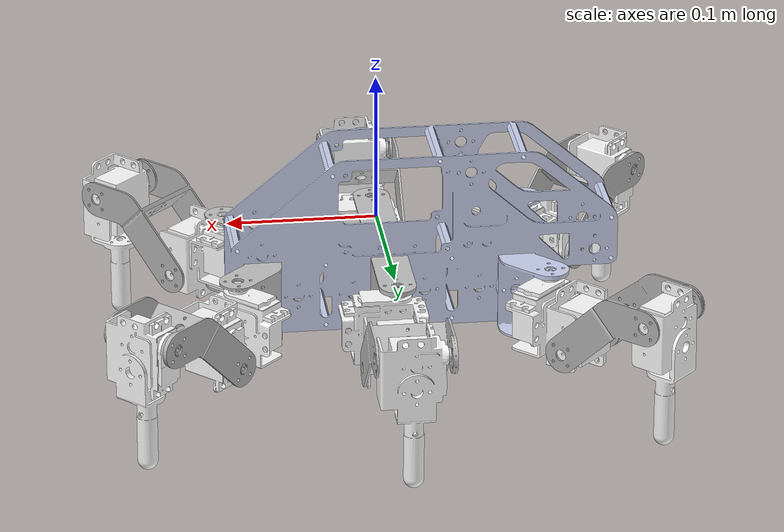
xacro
<?xml version="1.0" encoding="utf-8"?>
<!-- |    This document was autogenerated by xacro from sample_hexapod_robot.urdf      | -->
<!-- |    EDITING THIS FILE BY HAND IS NOT RECOMMENDED                                 | -->
<robot name="sample_hexapod_robot">
  <link name="base_link">
    <inertial>
      <origin rpy="0 0 0" xyz="-0.0201724295551156 -0.0157441046135445 -0.00674889408254364"/>
      <mass
        value="0.0716155283270815" />
      <inertia
        ixx="6.13329692510778E-05"
        ixy="1.59034863834077E-05"
        ixz="1.20390377320831E-22"
        iyy="0.00027215207463891"
        iyz="1.62249266634428E-22"
        izz="0.00032629128217773" />
    </inertial>
    <visual>
      <origin rpy="0 0 0" xyz="0 0 0"/>
      <geometry>
        <mesh filename="package://sample_hexapod_robot/meshes/base_link.STL"/>
      </geometry>
      <material name="">
        <color rgba="0.792156862745098 0.819607843137255 0.933333333333333 1"/>
      </material>
    </visual>
    <collision>
      <origin rpy="0 0 0" xyz="0 0 0"/>
      <geometry>
        <mesh filename="package://sample_hexapod_robot/meshes/base_link.STL"/>
      </geometry>
    </collision>
  </link>
  <link name="RightFrontLink1">
    <inertial>
      <origin rpy="0 0 0" xyz="-2.77555756156289E-17 0.0117444424090268 -0.00583560923500802"/>
      <mass value="0.00481299409312765"/>
      <inertia ixx="1.18177478674688E-06" ixy="-1.42650712427758E-21" ixz="-2.59695162761179E-24" iyy="2.88509010884338E-06" iyz="3.65304851631169E-07" izz="2.98596434344079E-06"/>
    </inertial>
    <visual>
      <origin rpy="0 0 0" xyz="0 0 0"/>
      <geometry>
        <mesh filename="package://sample_hexapod_robot/meshes/RightFrontLink1.STL"/>
      </geometry>
      <material name="">
        <color rgba="0.752941176470588 0.752941176470588 0.752941176470588 1"/>
      </material>
    </visual>
    <collision>
      <origin rpy="0 0 0" xyz="0 0 0"/>
      <geometry>
        <mesh filename="package://sample_hexapod_robot/meshes/RightFrontLink1.STL"/>
      </geometry>
    </collision>
  </link>
  <joint name="RightFrontJoint1" type="fixed">
    <origin rpy="3.14159265358979 1.5707963267949 0" xyz="0.0797966933644301 -0.0194131059174563 -0.0399893477490188"/>
    <parent link="base_link"/>
    <child link="RightFrontLink1"/>
    <axis xyz="0 0 0"/>
    <dynamics damping="0.015" friction="0.20"/>
    <limit effort="10" velocity="0.5" lower="-2.2" upper="2.2" />
  </joint>
  <link name="RightFrontLink2">
    <inertial>
      <origin rpy="0 0 0" xyz="0.00452867992289666 0.0139710440348122 -0.00560326484439639"/>
      <mass value="0.0532163858371582"/>
      <inertia ixx="8.59655539356453E-06" ixy="1.38445250775542E-07" ixz="3.37486665413632E-08" iyy="1.32545838824263E-05" iyz="-1.38471551019802E-07" izz="8.62839306366304E-06"/>
    </inertial>
    <visual>
      <origin rpy="0 0 0" xyz="0 0 0"/>
      <geometry>
        <mesh filename="package://sample_hexapod_robot/meshes/RightFrontLink2.STL"/>
      </geometry>
      <material name="">
        <color rgba="1 1 1 1"/>
      </material>
    </visual>
    <collision>
      <origin rpy="0 0 0" xyz="0 0 0"/>
      <geometry>
        <mesh filename="package://sample_hexapod_robot/meshes/RightFrontLink2.STL"/>
      </geometry>
    </collision>
  </link>
  <joint name="RightFrontJoint2" type="continuous">
    <origin rpy="-1.5707963267949 -0.786246680506596 1.5707963267949" xyz="0 0.0270001999999999 -0.0186562999999996"/>
    <parent link="RightFrontLink1"/>
    <child link="RightFrontLink2"/>
    <axis xyz="0 0 1"/>
    <dynamics damping="0.015" friction="0.20"/>
    <limit effort="10" velocity="0.5" lower="-2.2" upper="2.2" />
  </joint>
  <link name="RightFrontLink3">
    <inertial>
      <origin rpy="0 0 0" xyz="0.0404128398424304 0.00597660677483936 0.00369375749998602"/>
      <mass value="0.0123870986027426"/>
      <inertia ixx="6.14529175645602E-06" ixy="1.23648254560111E-13" ixz="-3.65304851631165E-07" iyy="3.44355530037888E-06" iyz="-1.23648258901154E-13" izz="7.79938480929225E-06"/>
    </inertial>
    <visual>
      <origin rpy="0 0 0" xyz="0 0 0"/>
      <geometry>
        <mesh filename="package://sample_hexapod_robot/meshes/RightFrontLink3.STL"/>
      </geometry>
      <material name="">
        <color rgba="0.698039215686274 0.698039215686274 0.698039215686274 1"/>
      </material>
    </visual>
    <collision>
      <origin rpy="0 0 0" xyz="0 0 0"/>
      <geometry>
        <mesh filename="package://sample_hexapod_robot/meshes/RightFrontLink3.STL"/>
      </geometry>
    </collision>
  </link>
  <joint name="RightFrontJoint3" type="continuous">
    <origin rpy="3.14159265358979 -0.785398163397442 1.5707963267949" xyz="0 0.0284480000000001 -0.019127099952002"/>
    <parent link="RightFrontLink2"/>
    <child link="RightFrontLink3"/>
    <axis xyz="0 1 0"/>
    <dynamics damping="0.015" friction="0.20"/>
    <limit effort="10" velocity="0.5" lower="-2.2" upper="2.2" />
  </joint>
  <link name="RightFrontLink4">
    <inertial>
      <origin rpy="0 0 0" xyz="0.017502224050596 0.00213695685860105 4.7020139145551E-05"/>
      <mass value="0.0328903409487069"/>
      <inertia ixx="3.98709519783942E-06" ixy="1.2256306723942E-07" ixz="1.68744277076862E-08" iyy="7.43377213845983E-06" iyz="-1.38372953220074E-07" izz="5.85869865539314E-06"/>
    </inertial>
    <visual>
      <origin rpy="0 0 0" xyz="0 0 0"/>
      <geometry>
        <mesh filename="package://sample_hexapod_robot/meshes/RightFrontLink4.STL"/>
      </geometry>
      <material name="">
        <color rgba="1 1 1 1"/>
      </material>
    </visual>
    <collision>
      <origin rpy="0 0 0" xyz="0 0 0"/>
      <geometry>
        <mesh filename="package://sample_hexapod_robot/meshes/RightFrontLink4.STL"/>
      </geometry>
    </collision>
  </link>
  <joint name="RightFrontJoint4" type="continuous">
    <origin rpy="1.5707963267949 -0.785398163397455 3.14159265358979" xyz="0.0730630999999997 0 0.0186563000000001"/>
    <parent link="RightFrontLink3"/>
    <child link="RightFrontLink4"/>
    <axis xyz="0 0 1"/>
    <dynamics damping="0.015" friction="0.20"/>
    <limit effort="10" velocity="0.5" lower="-2.2" upper="2.2" />
  </joint>
  <link name="LeftFrontLink1">
    <inertial>
      <origin rpy="0 0 0" xyz="-6.93889390390723E-18 0.0117444424090268 -0.00583560923500803"/>
      <mass value="0.00481299409312765"/>
      <inertia ixx="1.18177478674687E-06" ixy="3.83641268413852E-22" ixz="7.43348252236493E-22" iyy="2.88509010884338E-06" iyz="3.65304851631169E-07" izz="2.98596434344079E-06"/>
    </inertial>
    <visual>
      <origin rpy="0 0 0" xyz="0 0 0"/>
      <geometry>
        <mesh filename="package://sample_hexapod_robot/meshes/LeftFrontLink1.STL"/>
      </geometry>
      <material name="">
        <color rgba="0.752941176470588 0.752941176470588 0.752941176470588 1"/>
      </material>
    </visual>
    <collision>
      <origin rpy="0 0 0" xyz="0 0 0"/>
      <geometry>
        <mesh filename="package://sample_hexapod_robot/meshes/LeftFrontLink1.STL"/>
      </geometry>
    </collision>
  </link>
  <joint name="LeftFrontJoint1" type="fixed">
    <origin rpy="0 -1.5707963267949 0" xyz="0.0797966933644301 0.0329108940825437 -0.0399893477490188"/>
    <parent link="base_link"/>
    <child link="LeftFrontLink1"/>
    <axis xyz="0 0 0"/>
    <dynamics damping="0.015" friction="0.20"/>
    <limit effort="10" velocity="0.5" lower="-2.2" upper="2.2" />
  </joint>
  <link name="LeftFrontLInk2">
    <inertial>
      <origin rpy="0 0 0" xyz="0.0042927116829299 -0.0142494000000003 -0.00590628826906783"/>
      <mass value="0.0522696869799878"/>
      <inertia ixx="8.56368160000811E-06" ixy="-1.38274058125036E-07" ixz="3.5847434372441E-08" iyy="1.32217101778383E-05" iyz="1.38274058125032E-07" izz="8.56368160000811E-06"/>
    </inertial>
    <visual>
      <origin rpy="0 0 0" xyz="0 0 0"/>
      <geometry>
        <mesh filename="package://sample_hexapod_robot/meshes/LeftFrontLInk2.STL"/>
      </geometry>
      <material name="">
        <color rgba="1 1 1 1"/>
      </material>
    </visual>
    <collision>
      <origin rpy="0 0 0" xyz="0 0 0"/>
      <geometry>
        <mesh filename="package://sample_hexapod_robot/meshes/LeftFrontLInk2.STL"/>
      </geometry>
    </collision>
  </link>
  <joint name="LeftFrontJoint2" type="continuous">
    <origin rpy="1.5707963267949 -0.786246680508058 1.5707963267949" xyz="0 0.0269911968874116 -0.0186293668612354"/>
    <parent link="LeftFrontLink1"/>
    <child link="LeftFrontLInk2"/>
    <axis xyz="0 0 1"/>
    <dynamics damping="0.015" friction="0.20"/>
    <limit effort="10" velocity="0.5" lower="-2.2" upper="2.2" />
  </joint>
  <link name="LeftFrontLink3">
    <inertial>
      <origin rpy="0 0 0" xyz="-0.00369426510069479 0.00543050677483787 -0.0404133474431356"/>
      <mass value="0.0123870986027426"/>
      <inertia ixx="7.79943723513966E-06" ixy="2.47296509967254E-13" ixz="-3.65304851631169E-07" iyy="3.44355530037888E-06" iyz="-1.6940658945086E-21" izz="6.14523933060859E-06"/>
    </inertial>
    <visual>
      <origin rpy="0 0 0" xyz="0 0 0"/>
      <geometry>
        <mesh filename="package://sample_hexapod_robot/meshes/LeftFrontLink3.STL"/>
      </geometry>
      <material name="">
        <color rgba="0.698039215686274 0.698039215686274 0.698039215686274 1"/>
      </material>
    </visual>
    <collision>
      <origin rpy="0 0 0" xyz="0 0 0"/>
      <geometry>
        <mesh filename="package://sample_hexapod_robot/meshes/LeftFrontLink3.STL"/>
      </geometry>
    </collision>
  </link>
  <joint name="LeftFrontJoint3" type="continuous">
    <origin rpy="3.14159265358979 -0.785398163397443 1.5707963267949" xyz="0 -0.0284734 -0.0185936999519958"/>
    <parent link="LeftFrontLInk2"/>
    <child link="LeftFrontLink3"/>
    <axis xyz="0 1 0"/>
    <dynamics damping="0.015" friction="0.20"/>
    <limit effort="10" velocity="0.5" lower="-2.2" upper="2.2" />
  </joint>
  <link name="LeftFrontLink4">
    <inertial>
      <origin rpy="0 0 0" xyz="0.0173312004836655 -0.00213695685902054 -0.00049907986087272"/>
      <mass value="0.0328903409487069"/>
      <inertia ixx="3.9870951978397E-06" ixy="-1.22365823567027E-07" ixz="1.79235818286107E-08" iyy="7.4337721384596E-06" iyz="1.38372942876725E-07" izz="5.85869865539311E-06"/>
    </inertial>
    <visual>
      <origin rpy="0 0 0" xyz="0 0 0"/>
      <geometry>
        <mesh filename="package://sample_hexapod_robot/meshes/LeftFrontLink4.STL"/>
      </geometry>
      <material name="">
        <color rgba="1 1 1 1"/>
      </material>
    </visual>
    <collision>
      <origin rpy="0 0 0" xyz="0 0 0"/>
      <geometry>
        <mesh filename="package://sample_hexapod_robot/meshes/LeftFrontLink4.STL"/>
      </geometry>
    </collision>
  </link>
  <joint name="LeftFrontJoint4" type="continuous">
    <origin rpy="1.5707963267959 -0.785398163398452 3.14159265358838" xyz="-0.0186563000000022 0 -0.073063099999997"/>
    <parent link="LeftFrontLink3"/>
    <child link="LeftFrontLink4"/>
    <axis xyz="0 0 1"/>
    <dynamics damping="0.015" friction="0.20"/>
    <limit effort="10" velocity="0.5" lower="-2.2" upper="2.2" />
  </joint>
  <link name="MiddleRightLink1">
    <inertial>
      <origin rpy="0 0 0" xyz="-0.00338972796446857 0.0229454122748954 9.48742289353863E-07"/>
      <mass value="0.00662740565244451"/>
      <inertia ixx="2.19706904997707E-06" ixy="2.1649945772828E-21" ixz="1.23648259153443E-13" iyy="3.22730168561668E-06" iyz="4.67113118283495E-22" izz="4.78057292970292E-06"/>
    </inertial>
    <visual>
      <origin rpy="0 0 0" xyz="0 0 0"/>
      <geometry>
        <mesh filename="package://sample_hexapod_robot/meshes/MiddleRightLink1.STL"/>
      </geometry>
      <material name="">
        <color rgba="0.752941176470588 0.752941176470588 0.752941176470588 1"/>
      </material>
    </visual>
    <collision>
      <origin rpy="0 0 0" xyz="0 0 0"/>
      <geometry>
        <mesh filename="package://sample_hexapod_robot/meshes/MiddleRightLink1.STL"/>
      </geometry>
    </collision>
  </link>
  <joint name="MiddleRightJoint1" type="fixed">
    <origin rpy="3.1416 1.5708 0" xyz="-0.0045313 -0.019413 -0.039989"/>
    <parent link="base_link"/>
    <child link="MiddleRightLink1"/>
    <axis xyz="0 0 0"/>
    <dynamics damping="0.015" friction="0.20"/>
    <limit effort="10" velocity="0.5" lower="-2.2" upper="2.2" />
  </joint>
  <link name="MiddleRightLink2">
    <inertial>
      <origin rpy="0 0 0" xyz="0.00600434318283062 -0.0142239999999997 -0.00612161228746982"/>
      <mass value="0.0522696869799877"/>
      <inertia ixx="8.5636816000081E-06" ixy="1.384714636615E-07" ixz="1.04942766887823E-09" iyy="1.32217101778383E-05" iyz="1.38471463661503E-07" izz="8.5636816000081E-06"/>
    </inertial>
    <visual>
      <origin rpy="0 0 0" xyz="0 0 0"/>
      <geometry>
        <mesh filename="package://sample_hexapod_robot/meshes/MiddleRightLink2.STL"/>
      </geometry>
      <material name="">
        <color rgba="1 1 1 1"/>
      </material>
    </visual>
    <collision>
      <origin rpy="0 0 0" xyz="0 0 0"/>
      <geometry>
        <mesh filename="package://sample_hexapod_robot/meshes/MiddleRightLink2.STL"/>
      </geometry>
    </collision>
  </link>
  <joint name="MiddleRightJoint2" type="continuous">
    <origin rpy="3.1416 1.5708 0" xyz="0 0.046063 0"/>
    <parent link="MiddleRightLink1"/>
    <child link="MiddleRightLink2"/>
    <axis xyz="0 0 1"/>
    <dynamics damping="0.015" friction="0.20"/>
    <limit effort="10" velocity="0.5" lower="-2.2" upper="2.2" />
  </joint>
  <link name="MiddleRightLink3">
    <inertial>
      <origin rpy="0 0 0" xyz="0.00369060677483836 -0.0404128398424318 0.00369375749998502"/>
      <mass value="0.0123870986027426"/>
      <inertia ixx="3.44355530037886E-06" ixy="-1.23648257198683E-13" ixz="-1.2364825584536E-13" iyy="6.145291756456E-06" iyz="3.65304851631167E-07" izz="7.79938480929222E-06"/>
    </inertial>
    <visual>
      <origin rpy="0 0 0" xyz="0 0 0"/>
      <geometry>
        <mesh filename="package://sample_hexapod_robot/meshes/MiddleRightLink3.STL"/>
      </geometry>
      <material name="">
        <color rgba="0.752941176470588 0.752941176470588 0.752941176470588 1"/>
      </material>
    </visual>
    <collision>
      <origin rpy="0 0 0" xyz="0 0 0"/>
      <geometry>
        <mesh filename="package://sample_hexapod_robot/meshes/MiddleRightLink3.STL"/>
      </geometry>
    </collision>
  </link>
  <joint name="MiddleRightJoint3" type="continuous">
    <origin rpy="-2.3562 0 -3.1416" xyz="0 -0.028448 -0.019114"/>
    <parent link="MiddleRightLink2"/>
    <child link="MiddleRightLink3"/>
    <axis xyz="1 0 0"/>
    <dynamics damping="0.015" friction="0.20"/>
    <limit effort="10" velocity="0.5" lower="-2.2" upper="2.2" />
  </joint>
  <link name="MiddleRightLink4">
    <inertial>
      <origin rpy="0 0 0" xyz="0.0175022240505962 0.00213695685903806 -0.0022389798194285"/>
      <mass value="0.0328903409487069"/>
      <inertia ixx="3.98709519783942E-06" ixy="1.22563067417214E-07" ixz="1.68744248766835E-08" iyy="7.43377213845984E-06" iyz="-1.38372953220075E-07" izz="5.85869865539314E-06"/>
    </inertial>
    <visual>
      <origin rpy="0 0 0" xyz="0 0 0"/>
      <geometry>
        <mesh filename="package://sample_hexapod_robot/meshes/MiddleRightLink4.STL"/>
      </geometry>
      <material name="">
        <color rgba="1 1 1 1"/>
      </material>
    </visual>
    <collision>
      <origin rpy="0 0 0" xyz="0 0 0"/>
      <geometry>
        <mesh filename="package://sample_hexapod_robot/meshes/MiddleRightLink4.STL"/>
      </geometry>
    </collision>
  </link>
  <joint name="MiddleRightJoint4" type="continuous">
    <origin rpy="1.5708 -0.7854 1.5708" xyz="0 -0.073063 0.018656"/>
    <parent link="MiddleRightLink3"/>
    <child link="MiddleRightLink4"/>
    <axis xyz="0 0 1"/>
    <dynamics damping="0.015" friction="0.20"/>
    <limit effort="10" velocity="0.5" lower="-2.2" upper="2.2" />
  </joint>
  <link name="MiddleLeftLink1">
    <inertial>
      <origin rpy="0 0 0" xyz="-0.00338972796446862 0.0229454122748954 -9.48742289343454E-07"/>
      <mass value="0.0066274056524445"/>
      <inertia ixx="2.19706904997706E-06" ixy="7.3352551952893E-22" ixz="-1.23648257245624E-13" iyy="3.22730168561668E-06" iyz="-1.38649015147347E-21" izz="4.78057292970291E-06"/>
    </inertial>
    <visual>
      <origin rpy="0 0 0" xyz="0 0 0"/>
      <geometry>
        <mesh filename="package://sample_hexapod_robot/meshes/MiddleLeftLink1.STL"/>
      </geometry>
      <material name="">
        <color rgba="0.752941176470588 0.752941176470588 0.752941176470588 1"/>
      </material>
    </visual>
    <collision>
      <origin rpy="0 0 0" xyz="0 0 0"/>
      <geometry>
        <mesh filename="package://sample_hexapod_robot/meshes/MiddleLeftLink1.STL"/>
      </geometry>
    </collision>
  </link>
  <joint name="MiddleLeftJoint1" type="fixed">
    <origin rpy="0 1.5708 0" xyz="-0.0045313 0.032911 -0.039989"/>
    <parent link="base_link"/>
    <child link="MiddleLeftLink1"/>
    <axis xyz="0 0 0"/>
    <dynamics damping="0.015" friction="0.20"/>
    <limit effort="10" velocity="0.5" lower="-2.2" upper="2.2" />
  </joint>
  <link name="MiddleLeftLink2">
    <inertial>
      <origin rpy="0 0 0" xyz="0.00630971916442873 0.0142240000000001 -0.00589358826906994"/>
      <mass value="0.0522696869799877"/>
      <inertia ixx="8.5636816000081E-06" ixy="-1.38274058125033E-07" ixz="-1.0494276688793E-09" iyy="1.32217101778383E-05" iyz="-1.38274058125026E-07" izz="8.5636816000081E-06"/>
    </inertial>
    <visual>
      <origin rpy="0 0 0" xyz="0 0 0"/>
      <geometry>
        <mesh filename="package://sample_hexapod_robot/meshes/MiddleLeftLink2.STL"/>
      </geometry>
      <material name="">
        <color rgba="1 1 1 1"/>
      </material>
    </visual>
    <collision>
      <origin rpy="0 0 0" xyz="0 0 0"/>
      <geometry>
        <mesh filename="package://sample_hexapod_robot/meshes/MiddleLeftLink2.STL"/>
      </geometry>
    </collision>
  </link>
  <joint name="MiddleLeftJoint2" type="continuous">
    <origin rpy="3.1416 -1.5708 3.14" xyz="0 0.046063 0"/>
    <parent link="MiddleLeftLink1"/>
    <child link="MiddleLeftLink2"/>
    <axis xyz="0 0 1"/>
    <dynamics damping="0.015" friction="0.20"/>
    <limit effort="10" velocity="0.5" lower="-2.2" upper="2.2" />
  </joint>
  <link name="MiddleLeftLink3">
    <inertial>
      <origin rpy="0 0 0" xyz="0.00315720677483883 -0.0404138550438462 -0.00369375749998499"/>
      <mass value="0.0123870986027426"/>
      <inertia ixx="3.44355530037888E-06" ixy="1.2364826165101E-13" ixz="1.23648262871156E-13" iyy="6.14529175645598E-06" iyz="-3.65304851631168E-07" izz="7.79938480929223E-06"/>
    </inertial>
    <visual>
      <origin rpy="0 0 0" xyz="0 0 0"/>
      <geometry>
        <mesh filename="package://sample_hexapod_robot/meshes/MiddleLeftLink3.STL"/>
      </geometry>
      <material name="">
        <color rgba="0.752941176470588 0.752941176470588 0.752941176470588 1"/>
      </material>
    </visual>
    <collision>
      <origin rpy="0 0 0" xyz="0 0 0"/>
      <geometry>
        <mesh filename="package://sample_hexapod_robot/meshes/MiddleLeftLink3.STL"/>
      </geometry>
    </collision>
  </link>
  <joint name="MiddleLeftJoint3" type="continuous">
    <origin rpy="-0.7854 0 -3.1416" xyz="0 0.028448 -0.018581"/>
    <parent link="MiddleLeftLink2"/>
    <child link="MiddleLeftLink3"/>
    <axis xyz="1 0 0"/>
    <dynamics damping="0.015" friction="0.20"/>
    <limit effort="10" velocity="0.5" lower="-2.2" upper="2.2" />
  </joint>
  <link name="MiddleLeftLink4">
    <inertial>
      <origin rpy="0 0 0" xyz="0.0173312004836624 -0.002136956859038 -0.00277237986085704"/>
      <mass value="0.0328903409487069"/>
      <inertia ixx="3.98709519783942E-06" ixy="-1.22365823563716E-07" ixz="1.79235818268787E-08" iyy="7.43377213845985E-06" iyz="1.38372942876585E-07" izz="5.85869865539315E-06"/>
    </inertial>
    <visual>
      <origin rpy="0 0 0" xyz="0 0 0"/>
      <geometry>
        <mesh filename="package://sample_hexapod_robot/meshes/MiddleLeftLink4.STL"/>
      </geometry>
      <material name="">
        <color rgba="1 1 1 1"/>
      </material>
    </visual>
    <collision>
      <origin rpy="0 0 0" xyz="0 0 0"/>
      <geometry>
        <mesh filename="package://sample_hexapod_robot/meshes/MiddleLeftLink4.STL"/>
      </geometry>
    </collision>
  </link>
  <joint name="MiddleLeftJoint4" type="continuous">
    <origin rpy="1.5708 0.7854 1.5708" xyz="0 -0.073063 -0.018656"/>
    <parent link="MiddleLeftLink3"/>
    <child link="MiddleLeftLink4"/>
    <axis xyz="0 0 1"/>
    <dynamics damping="0.015" friction="0.20"/>
    <limit effort="10" velocity="0.5" lower="-2.2" upper="2.2" />
  </joint>
  <link name="BottomRightLink1">
    <inertial>
      <origin rpy="0 0 0" xyz="-0.00544490603885191 -0.0151146056014377 0.00266986656589765"/>
      <mass value="0.00840681165634204"/>
      <inertia ixx="3.14658069674164E-06" ixy="-3.65304846028535E-07" ixz="3.10536586089031E-10" iyy="3.15571586439312E-06" iyz="-6.39792134758118E-11" izz="1.37420266058929E-06"/>
    </inertial>
    <visual>
      <origin rpy="0 0 0" xyz="0 0 0"/>
      <geometry>
        <mesh filename="package://sample_hexapod_robot/meshes/BottomRightLink1.STL"/>
      </geometry>
      <material name="">
        <color rgba="0.792156862745098 0.819607843137255 0.933333333333333 1"/>
      </material>
    </visual>
    <collision>
      <origin rpy="0 0 0" xyz="0 0 0"/>
      <geometry>
        <mesh filename="package://sample_hexapod_robot/meshes/BottomRightLink1.STL"/>
      </geometry>
    </collision>
  </link>
  <joint name="BottomRightJoint1" type="fixed">
    <origin rpy="0 0.00017514 0" xyz="-0.088859 -0.019413 -0.039989"/>
    <parent link="base_link"/>
    <child link="BottomRightLink1"/>
    <axis xyz="0 1 0"/>
    <dynamics damping="0.015" friction="0.20"/>
    <limit effort="10" velocity="0.5" lower="-2.2" upper="2.2" />
  </joint>
  <link name="BottomRightLink2">
    <inertial>
      <origin rpy="0 0 0" xyz="0.00600434318283 -0.014224 -0.00613431228747037"/>
      <mass value="0.0522696869799878"/>
      <inertia ixx="8.56368160000811E-06" ixy="1.38471463661502E-07" ixz="1.04942766887751E-09" iyy="1.32217101778383E-05" iyz="1.38471463661504E-07" izz="8.5636816000081E-06"/>
    </inertial>
    <visual>
      <origin rpy="0 0 0" xyz="0 0 0"/>
      <geometry>
        <mesh filename="package://sample_hexapod_robot/meshes/BottomRightLink2.STL"/>
      </geometry>
      <material name="">
        <color rgba="1 1 1 1"/>
      </material>
    </visual>
    <collision>
      <origin rpy="0 0 0" xyz="0 0 0"/>
      <geometry>
        <mesh filename="package://sample_hexapod_robot/meshes/BottomRightLink2.STL"/>
      </geometry>
    </collision>
  </link>
  <joint name="BottomRightJoint2" type="continuous">
    <origin rpy="0.00012374 -0.00012395 -0.78455" xyz="-0.018656 -0.03335 0"/>
    <parent link="BottomRightLink1"/>
    <child link="BottomRightLink2"/>
    <axis xyz="0 0 1"/>
    <dynamics damping="0.015" friction="0.20"/>
    <limit effort="10" velocity="0.5" lower="-2.2" upper="2.2" />
  </joint>
  <link name="BottomRightLink3">
    <inertial>
      <origin rpy="0 0 0" xyz="-0.0404138550438458 0.00369060677483947 -0.00369375749998468"/>
      <mass value="0.0123870986027426"/>
      <inertia ixx="6.14529175645597E-06" ixy="1.23648256148297E-13" ixz="-3.6530485163117E-07" iyy="3.44355530037887E-06" iyz="1.23648254560111E-13" izz="7.79938480929219E-06"/>
    </inertial>
    <visual>
      <origin rpy="0 0 0" xyz="0 0 0"/>
      <geometry>
        <mesh filename="package://sample_hexapod_robot/meshes/BottomRightLink3.STL"/>
      </geometry>
      <material name="">
        <color rgba="0.698039215686274 0.698039215686274 0.698039215686274 1"/>
      </material>
    </visual>
    <collision>
      <origin rpy="0 0 0" xyz="0 0 0"/>
      <geometry>
        <mesh filename="package://sample_hexapod_robot/meshes/BottomRightLink3.STL"/>
      </geometry>
    </collision>
  </link>
  <joint name="BottomRightJoint3" type="continuous">
    <origin rpy="0 0.785398163397454 1.5707963267949" xyz="0 -0.028448 -0.019127099952"/>
    <parent link="BottomRightLink2"/>
    <child link="BottomRightLink3"/>
    <axis xyz="0 1 0"/>
    <dynamics damping="0.015" friction="0.20"/>
    <limit effort="10" velocity="0.5" lower="-2.2" upper="2.2" />
  </joint>
  <link name="BottomRightLink4">
    <inertial>
      <origin rpy="0 0 0" xyz="0.017502222237589 0.00213695685903822 -0.00223898052686797"/>
      <mass value="0.0328903409487069"/>
      <inertia ixx="3.98709519783942E-06" ixy="1.22563229100187E-07" ixz="1.68744248766831E-08" iyy="7.43377213845984E-06" iyz="-1.38372578909951E-07" izz="5.85869865539314E-06"/>
    </inertial>
    <visual>
      <origin rpy="0 0 0" xyz="0 0 0"/>
      <geometry>
        <mesh filename="package://sample_hexapod_robot/meshes/BottomRightLink4.STL"/>
      </geometry>
      <material name="">
        <color rgba="1 1 1 1"/>
      </material>
    </visual>
    <collision>
      <origin rpy="0 0 0" xyz="0 0 0"/>
      <geometry>
        <mesh filename="package://sample_hexapod_robot/meshes/BottomRightLink4.STL"/>
      </geometry>
    </collision>
  </link>
  <joint name="BottomRightJoint4" type="continuous">
    <origin rpy="-1.5707963267949 0.785398163397442 0" xyz="-0.0730630999999976 0 -0.0186562999999977"/>
    <parent link="BottomRightLink3"/>
    <child link="BottomRightLink4"/>
    <axis xyz="0 0 1"/>
    <dynamics damping="0.015" friction="0.20"/>
    <limit effort="10" velocity="0.5" lower="-2.2" upper="2.2" />
  </joint>
  <link name="BottomLeftLink1">
    <inertial>
      <origin rpy="0 0 0" xyz="-0.0054444383569754 -0.0151146056014377 -0.0026708198202042"/>
      <mass value="0.00840681165634204"/>
      <inertia ixx="3.14658075115044E-06" ixy="-3.6530485163117E-07" ixz="-1.23648257868793E-13" iyy="3.15571586439312E-06" iyz="1.96266958333954E-21" izz="1.37420260618049E-06"/>
    </inertial>
    <visual>
      <origin rpy="0 0 0" xyz="0 0 0"/>
      <geometry>
        <mesh filename="package://sample_hexapod_robot/meshes/BottomLeftLink1.STL"/>
      </geometry>
      <material name="">
        <color rgba="0.792156862745098 0.819607843137255 0.933333333333333 1"/>
      </material>
    </visual>
    <collision>
      <origin rpy="0 0 0" xyz="0 0 0"/>
      <geometry>
        <mesh filename="package://sample_hexapod_robot/meshes/BottomLeftLink1.STL"/>
      </geometry>
    </collision>
  </link>
  <joint name="BottomLeftJoint1" type="fixed">
    <origin rpy="3.1416 0 0" xyz="-0.088859 0.032911 -0.039989"/>
    <parent link="base_link"/>
    <child link="BottomLeftLink1"/>
    <axis xyz="0 1 0"/>
    <dynamics damping="0.015" friction="0.20"/>
    <limit effort="10" velocity="0.5" lower="-2.2" upper="2.2" />
  </joint>
  <link name="BottomLeftLink2">
    <inertial>
      <origin rpy="0 0 0" xyz="0.0213846191644279 0.0191261999999996 -0.00590628826906894"/>
      <mass value="0.0522696869799878"/>
      <inertia ixx="8.5636816000081E-06" ixy="-1.38274058125027E-07" ixz="-1.04942766887137E-09" iyy="1.32217101778383E-05" iyz="-1.38274058125029E-07" izz="8.56368160000811E-06"/>
    </inertial>
    <visual>
      <origin rpy="0 0 0" xyz="0 0 0"/>
      <geometry>
        <mesh filename="package://sample_hexapod_robot/meshes/BottomLeftLink2.STL"/>
      </geometry>
      <material name="">
        <color rgba="1 1 1 1"/>
      </material>
    </visual>
    <collision>
      <origin rpy="0 0 0" xyz="0 0 0"/>
      <geometry>
        <mesh filename="package://sample_hexapod_robot/meshes/BottomLeftLink2.STL"/>
      </geometry>
    </collision>
  </link>
  <joint name="BottomLeftJoint2" type="continuous">
    <origin rpy="3.14159265358979 0 -0.78454964628684" xyz="-0.0258614686662949 -0.0192303657467149 0"/>
    <parent link="BottomLeftLink1"/>
    <child link="BottomLeftLink2"/>
    <axis xyz="0 0 1"/>
    <dynamics damping="0.015" friction="0.20"/>
    <limit effort="10" velocity="0.5" lower="-2.2" upper="2.2" />
  </joint>
  <link name="BottomLeftLink3">
    <inertial>
      <origin rpy="0 0 0" xyz="-0.0404138550438461 -0.0119176932251596 0.00369375749998496"/>
      <mass value="0.0123870986027426"/>
      <inertia ixx="6.14529175645598E-06" ixy="1.23648255407144E-13" ixz="3.6530485163117E-07" iyy="3.44355530037886E-06" iyz="-1.23648263665715E-13" izz="7.79938480929221E-06"/>
    </inertial>
    <visual>
      <origin rpy="0 0 0" xyz="0 0 0"/>
      <geometry>
        <mesh filename="package://sample_hexapod_robot/meshes/BottomLeftLink3.STL"/>
      </geometry>
      <material name="">
        <color rgba="0.698039215686274 0.698039215686274 0.698039215686274 1"/>
      </material>
    </visual>
    <collision>
      <origin rpy="0 0 0" xyz="0 0 0"/>
      <geometry>
        <mesh filename="package://sample_hexapod_robot/meshes/BottomLeftLink3.STL"/>
      </geometry>
    </collision>
  </link>
  <joint name="BottomLeftJoint3" type="continuous">
    <origin rpy="3.14159265358979 0.785398163397447 -1.5707963267949" xyz="0 0.0333501999999997 -0.0185936999519997"/>
    <parent link="BottomLeftLink2"/>
    <child link="BottomLeftLink3"/>
    <axis xyz="0 1 0"/>
    <dynamics damping="0.015" friction="0.20"/>
    <limit effort="10" velocity="0.5" lower="-2.2" upper="2.2" />
  </joint>
  <link name="BottomLeftLink4">
    <inertial>
      <origin rpy="0 0 0" xyz="0.0173312022966688 -0.00213695685860177 -0.0178472805268687"/>
      <mass value="0.0328903409487069"/>
      <inertia ixx="3.98709519783939E-06" ixy="-1.22365661702495E-07" ixz="1.79235789961424E-08" iyy="7.43377213845987E-06" iyz="1.38372568566472E-07" izz="5.85869865539314E-06"/>
    </inertial>
    <visual>
      <origin rpy="0 0 0" xyz="0 0 0"/>
      <geometry>
        <mesh filename="package://sample_hexapod_robot/meshes/BottomLeftLink4.STL"/>
      </geometry>
      <material name="">
        <color rgba="1 1 1 1"/>
      </material>
    </visual>
    <collision>
      <origin rpy="0 0 0" xyz="0 0 0"/>
      <geometry>
        <mesh filename="package://sample_hexapod_robot/meshes/BottomLeftLink4.STL"/>
      </geometry>
    </collision>
  </link>
  <joint name="BottomLeftJoint4" type="continuous">
    <origin rpy="-1.57079632679503 -0.785398163397583 0" xyz="-0.0730630999999995 0 0.0186563000000002"/>
    <parent link="BottomLeftLink3"/>
    <child link="BottomLeftLink4"/>
    <axis xyz="0 0 1"/>
    <dynamics damping="0.015" friction="0.20"/>
    <limit effort="10" velocity="0.5" lower="-2.2" upper="2.2" />
  </joint>
  <!-- FrontRightTransmissions -->
  <transmission name="RightFrontTran2">
    <type>transmission_interface/SimpleTransmission</type>
    <joint name="RightFrontJoint2">
      <hardwareInterface>hardware_interface/EffortJointInterface</hardwareInterface>
    </joint>
    <actuator name="RightFrontMotor2">
      <hardwareInterface>hardware_interface/EffortJointInterface</hardwareInterface>
      <mechanicalReduction>1</mechanicalReduction>
    </actuator>
  </transmission>
  <transmission name="RightFrontTran3">
    <type>transmission_interface/SimpleTransmission</type>
    <joint name="RightFrontJoint3">
      <hardwareInterface>hardware_interface/EffortJointInterface</hardwareInterface>
    </joint>
    <actuator name="RightFrontMotor3">
      <hardwareInterface>hardware_interface/EffortJointInterface</hardwareInterface>
      <mechanicalReduction>1</mechanicalReduction>
    </actuator>
  </transmission>
  <transmission name="RightFrontTran4">
    <type>transmission_interface/SimpleTransmission</type>
    <joint name="RightFrontJoint4">
      <hardwareInterface>hardware_interface/EffortJointInterface</hardwareInterface>
    </joint>
    <actuator name="RightFrontMotor4">
      <hardwareInterface>hardware_interface/EffortJointInterface</hardwareInterface>
      <mechanicalReduction>1</mechanicalReduction>
    </actuator>
  </transmission>
  <!-- LeftFrontTransmittion -->
  <transmission name="LeftFrontTran2">
    <type>transmission_interface/SimpleTransmission</type>
    <joint name="LeftFrontJoint2">
      <hardwareInterface>hardware_interface/EffortJointInterface</hardwareInterface>
    </joint>
    <actuator name="LeftFrontMotor2">
      <hardwareInterface>hardware_interface/EffortJointInterface</hardwareInterface>
      <mechanicalReduction>1</mechanicalReduction>
    </actuator>
  </transmission>
  <transmission name="LeftFrontTran3">
    <type>transmission_interface/SimpleTransmission</type>
    <joint name="LeftFrontJoint3">
      <hardwareInterface>hardware_interface/EffortJointInterface</hardwareInterface>
    </joint>
    <actuator name="LeftFrontMotor3">
      <hardwareInterface>hardware_interface/EffortJointInterface</hardwareInterface>
      <mechanicalReduction>1</mechanicalReduction>
    </actuator>
  </transmission>
  <transmission name="LeftFrontTran4">
    <type>transmission_interface/SimpleTransmission</type>
    <joint name="LeftFrontJoint4">
      <hardwareInterface>hardware_interface/EffortJointInterface</hardwareInterface>
    </joint>
    <actuator name="LeftFrontMotor4">
      <hardwareInterface>hardware_interface/EffortJointInterface</hardwareInterface>
      <mechanicalReduction>1</mechanicalReduction>
    </actuator>
  </transmission>
  <!-- MiddleRightTransmittion -->
  <transmission name="MiddleRightTran2">
    <type>transmission_interface/SimpleTransmission</type>
    <joint name="MiddleRightJoint2">
      <hardwareInterface>hardware_interface/EffortJointInterface</hardwareInterface>
    </joint>
    <actuator name="MiddleRightMotor2">
      <hardwareInterface>hardware_interface/EffortJointInterface</hardwareInterface>
      <mechanicalReduction>1</mechanicalReduction>
    </actuator>
  </transmission>
  <transmission name="MiddleRightTran3">
    <type>transmission_interface/SimpleTransmission</type>
    <joint name="MiddleRightJoint3">
      <hardwareInterface>hardware_interface/EffortJointInterface</hardwareInterface>
    </joint>
    <actuator name="MiddleRightMotor3">
      <hardwareInterface>hardware_interface/EffortJointInterface</hardwareInterface>
      <mechanicalReduction>1</mechanicalReduction>
    </actuator>
  </transmission>
  <transmission name="MiddleRightTran4">
    <type>transmission_interface/SimpleTransmission</type>
    <joint name="MiddleRightJoint4">
      <hardwareInterface>hardware_interface/EffortJointInterface</hardwareInterface>
    </joint>
    <actuator name="MiddleRightMotor4">
      <hardwareInterface>hardware_interface/EffortJointInterface</hardwareInterface>
      <mechanicalReduction>1</mechanicalReduction>
    </actuator>
  </transmission>
  <!-- MiddleLeftTransmittion -->
  <transmission name="MiddleLeftTran2">
    <type>transmission_interface/SimpleTransmission</type>
    <joint name="MiddleLeftJoint2">
      <hardwareInterface>hardware_interface/EffortJointInterface</hardwareInterface>
    </joint>
    <actuator name="MiddleLeftMotor2">
      <hardwareInterface>hardware_interface/EffortJointInterface</hardwareInterface>
      <mechanicalReduction>1</mechanicalReduction>
    </actuator>
  </transmission>
  <transmission name="MiddleLeftTran3">
    <type>transmission_interface/SimpleTransmission</type>
    <joint name="MiddleLeftJoint3">
      <hardwareInterface>hardware_interface/EffortJointInterface</hardwareInterface>
    </joint>
    <actuator name="MiddleLeftMotor3">
      <hardwareInterface>hardware_interface/EffortJointInterface</hardwareInterface>
      <mechanicalReduction>1</mechanicalReduction>
    </actuator>
  </transmission>
  <transmission name="MiddleLeftTran4">
    <type>transmission_interface/SimpleTransmission</type>
    <joint name="MiddleLeftJoint4">
      <hardwareInterface>hardware_interface/EffortJointInterface</hardwareInterface>
    </joint>
    <actuator name="MiddleLeftMotor4">
      <hardwareInterface>hardware_interface/EffortJointInterface</hardwareInterface>
      <mechanicalReduction>1</mechanicalReduction>
    </actuator>
  </transmission>
  <!-- BottomRightTransmittion -->
  <transmission name="BottomRightTran2">
    <type>transmission_interface/SimpleTransmission</type>
    <joint name="BottomRightJoint2">
      <hardwareInterface>hardware_interface/EffortJointInterface</hardwareInterface>
    </joint>
    <actuator name="BottomRightMotor2">
      <hardwareInterface>hardware_interface/EffortJointInterface</hardwareInterface>
      <mechanicalReduction>1</mechanicalReduction>
    </actuator>
  </transmission>
  <transmission name="BottomRightTran3">
    <type>transmission_interface/SimpleTransmission</type>
    <joint name="BottomRightJoint3">
      <hardwareInterface>hardware_interface/EffortJointInterface</hardwareInterface>
    </joint>
    <actuator name="BottomRightMotor3">
      <hardwareInterface>hardware_interface/EffortJointInterface</hardwareInterface>
      <mechanicalReduction>1</mechanicalReduction>
    </actuator>
  </transmission>
  <transmission name="BottomRightTran4">
    <type>transmission_interface/SimpleTransmission</type>
    <joint name="BottomRightJoint4">
      <hardwareInterface>hardware_interface/EffortJointInterface</hardwareInterface>
    </joint>
    <actuator name="BottomRightMotor4">
      <hardwareInterface>hardware_interface/EffortJointInterface</hardwareInterface>
      <mechanicalReduction>1</mechanicalReduction>
    </actuator>
  </transmission>
  <!-- BottomLeftTransmittion -->
  <transmission name="BottomLeftTran2">
    <type>transmission_interface/SimpleTransmission</type>
    <joint name="BottomLeftJoint2">
      <hardwareInterface>hardware_interface/EffortJointInterface</hardwareInterface>
    </joint>
    <actuator name="BottomLeftMotor2">
      <hardwareInterface>hardware_interface/EffortJointInterface</hardwareInterface>
      <mechanicalReduction>1</mechanicalReduction>
    </actuator>
  </transmission>
  <transmission name="BottomLeftTran3">
    <type>transmission_interface/SimpleTransmission</type>
    <joint name="BottomLeftJoint3">
      <hardwareInterface>hardware_interface/EffortJointInterface</hardwareInterface>
    </joint>
    <actuator name="BottomLeftMotor3">
      <hardwareInterface>hardware_interface/EffortJointInterface</hardwareInterface>
      <mechanicalReduction>1</mechanicalReduction>
    </actuator>
  </transmission>
  <transmission name="BottomLeftTran4">
    <type>transmission_interface/SimpleTransmission</type>
    <joint name="BottomLeftJoint4">
      <hardwareInterface>hardware_interface/EffortJointInterface</hardwareInterface>
    </joint>
    <actuator name="BottomLeftMotor4">
      <hardwareInterface>hardware_interface/EffortJointInterface</hardwareInterface>
      <mechanicalReduction>1</mechanicalReduction>
    </actuator>
  </transmission>
  <!-- Gazebo plugin decleration -->
  <gazebo>
    <plugin filename="libgazebo_ros_control.so" name="gazebo_ros_control">
      <robotNamespace>/sample_hexapod_robot</robotNamespace>
    </plugin>
  </gazebo>
</robot>
